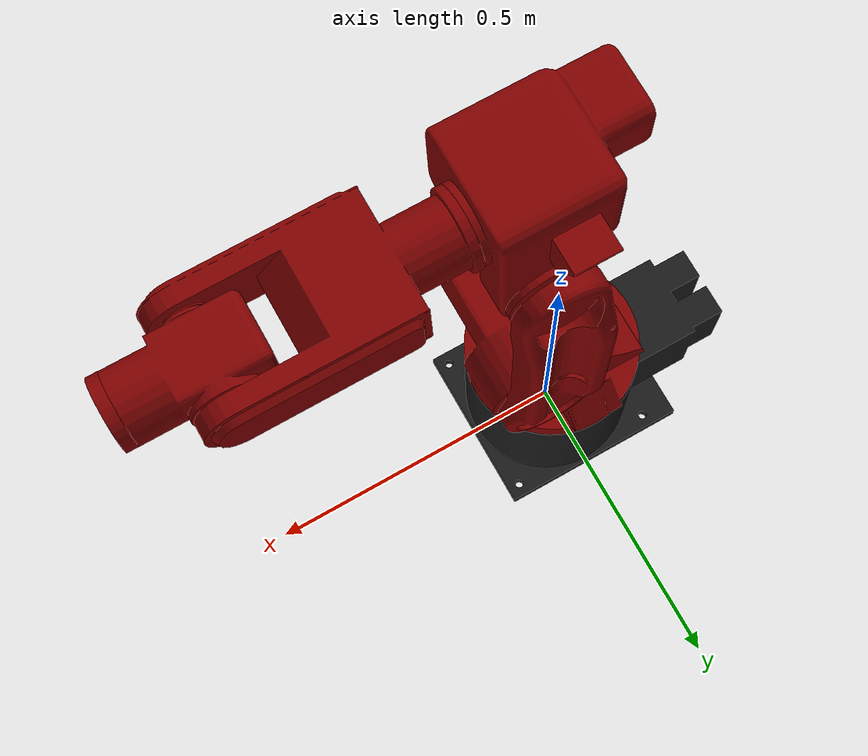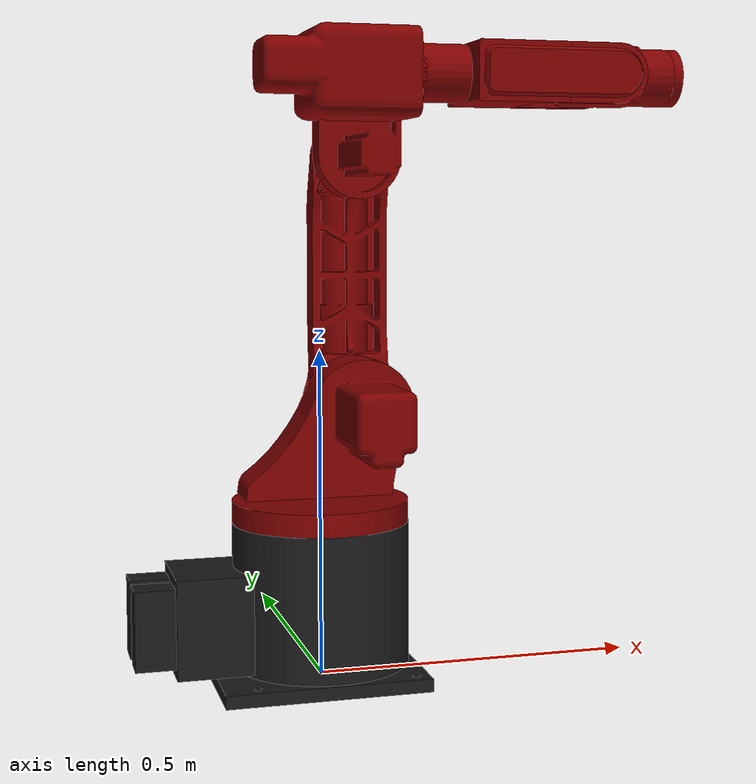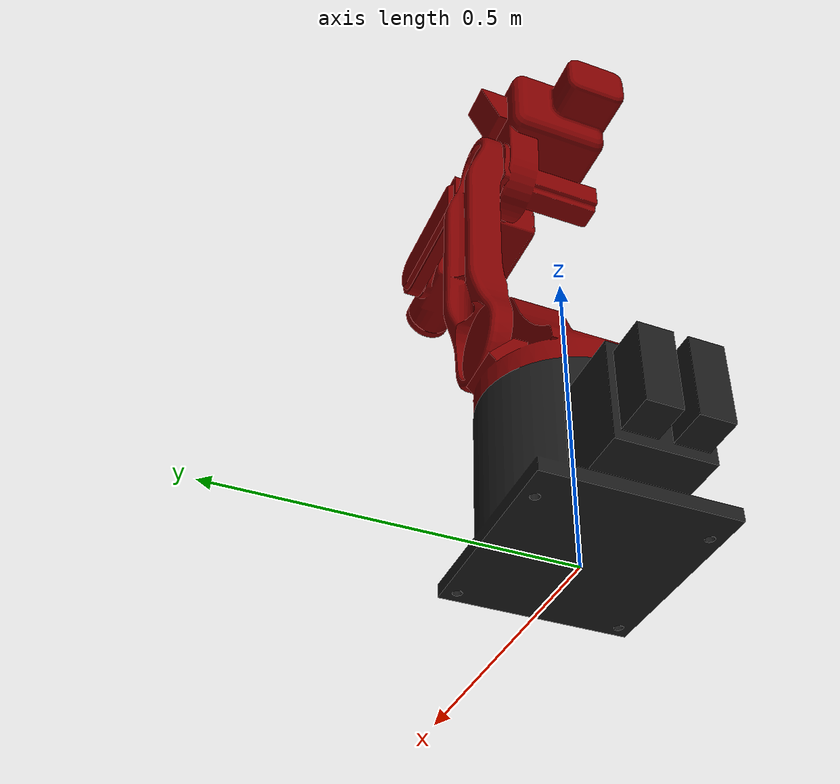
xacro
<?xml version="1.0" ?>
<robot name="borunte" xmlns:xacro="http://ros.org/wiki/xacro">
    <xacro:include filename="$(find borunte_support)/urdf/borunte_none_macro.xacro"/>
    <xacro:borunte_none_macro prefix=""/>

    <!-- 'world' frame: default pose reference frame -->
    <link name="world" />
    <joint name="world-base_link" type="fixed">
      <origin xyz="0 0 0" rpy="0 0 0"/>
      <axis xyz="0 0 1"/>
      <child link="world"/>
      <parent link="base_link"/>
    </joint>
</robot>

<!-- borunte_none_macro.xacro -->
<robot xmlns:xacro="http://ros.org/wiki/xacro">
  <xacro:macro name="borunte_none_macro" params="prefix">

    <xacro:include filename="$(find borunte_support)/urdf/borunte_macro.xacro"/>
    <xacro:borunte_macro prefix="${prefix}"/>

    <!-- ROS-Industrial 'tool0' frame: all-zeros tool frame -->
    <link name="${prefix}tool0" />
    <joint name="${prefix}flange-tool0" type="fixed">
      <!-- marker -->
      <origin xyz="0 0 0" rpy="0 ${pi*1} 0" />
      <parent link="${prefix}flange" />
      <child link="${prefix}tool0" />
    </joint>

  </xacro:macro>
</robot>

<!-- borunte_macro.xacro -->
<robot xmlns:xacro="http://ros.org/wiki/xacro">
  <xacro:macro name="borunte_macro" params="prefix">
    <material name="${prefix}Black">
      <color rgba="0.1 0.1 0.1 0.99"/>
    </material>
    <material name="${prefix}DarkRed">
      <color rgba="0.5 0.0 0.0 0.99"/>
    </material>

    <!-- link list -->
    <link name="${prefix}base_link">
      <visual>
        <geometry>
          <mesh filename="package://borunte_support/meshes/base_link.stl"/>
        </geometry>
        <origin rpy="0.0 0 0.0" xyz="0 0 0"/>
        <material name="${prefix}Black"/>
      </visual>
      <collision>
        <geometry>
          <mesh filename="package://borunte_support/meshes/base_link_collision.stl"/>
        </geometry>
        <origin rpy="0.0 0 0.0" xyz="0 0 0"/>
      </collision>
    </link>

    <link name="${prefix}link_1">
      <visual>
        <geometry>
          <mesh filename="package://borunte_support/meshes/link_1.stl"/>
        </geometry>
        <origin rpy="0.0 0 0.0" xyz="0 0 0"/>
        <material name="${prefix}DarkRed"/>
      </visual>
      <collision>
        <geometry>
          <mesh filename="package://borunte_support/meshes/link_1_collision.stl"/>
        </geometry>
        <origin rpy="0.0 0 0.0" xyz="0 0 0"/>
      </collision>
      <inertial>
        <mass value="100"/>
        <inertia ixx="1.0" ixy="0.0" ixz="0.0" iyy="1.0" iyz="0.0" izz="1.0"/>
      </inertial>
    </link>

    <link name="${prefix}link_2">
      <visual>
        <geometry>
          <mesh filename="package://borunte_support/meshes/link_2.stl"/>
        </geometry>
        <origin rpy="0.0 0 0.0" xyz="0 0 0"/>
        <material name="${prefix}DarkRed"/>
      </visual>
      <collision>
        <geometry>
          <mesh filename="package://borunte_support/meshes/link_2_collision.stl"/>
        </geometry>
        <origin rpy="0.0 0 0.0" xyz="0 0 0"/>
      </collision>
      <inertial>
        <mass value="100"/>
        <inertia ixx="1.0" ixy="0.0" ixz="0.0" iyy="1.0" iyz="0.0" izz="1.0"/>
      </inertial>
    </link>

    <link name="${prefix}link_3">
      <visual>
        <geometry>
          <mesh filename="package://borunte_support/meshes/link_3.stl"/>
        </geometry>
        <origin rpy="0.0 0 0.0" xyz="0 0.01 0"/>
        <material name="${prefix}DarkRed"/>
      </visual>
      <collision>
        <geometry>
          <mesh filename="package://borunte_support/meshes/link_3_collision.stl"/>
        </geometry>
        <origin rpy="0.0 0 0.0" xyz="0 0.01 0"/>
      </collision>
      <inertial>
        <mass value="100"/>
        <inertia ixx="1.0" ixy="0.0" ixz="0.0" iyy="1.0" iyz="0.0" izz="1.0"/>
      </inertial>
    </link>

    <link name="${prefix}link_4">
      <visual>
        <geometry>
          <mesh filename="package://borunte_support/meshes/link_4.stl"/>
        </geometry>
        <origin rpy="0.0 0.0 0.0" xyz="0 0 0"/>
        <material name="${prefix}DarkRed"/>
      </visual>
      <collision>
        <geometry>
          <mesh filename="package://borunte_support/meshes/link_4_collision.stl"/>
        </geometry>
        <origin rpy="0.0 0 0.0" xyz="0 0 0"/>
      </collision>
      <inertial>
        <mass value="100"/>
        <inertia ixx="1.0" ixy="0.0" ixz="0.0" iyy="1.0" iyz="0.0" izz="1.0"/>
      </inertial>
    </link>

    <link name="${prefix}link_5">
      <visual>
        <geometry>
          <mesh filename="package://borunte_support/meshes/link_5.stl"/>
        </geometry>
        <origin rpy="0 0 0" xyz="0 0 0"/>
        <material name="${prefix}DarkRed"/>
      </visual>
      <collision>
        <geometry>
          <mesh filename="package://borunte_support/meshes/link_5_collision.stl"/>
        </geometry>
        <origin rpy="0 0 0" xyz="0 0 0"/>
      </collision>
      <inertial>
        <mass value="100"/>
        <inertia ixx="1.0" ixy="0.0" ixz="0.0" iyy="1.0" iyz="0.0" izz="1.0"/>
      </inertial>
    </link>

    <link name="${prefix}link_6">
      <visual>
        <geometry>
          <mesh filename="package://borunte_support/meshes/link_6.stl"/>
        </geometry>
        <origin rpy="0 0 0.0" xyz="0 0 0"/>
        <material name="${prefix}DarkRed"/>
      </visual>
      <collision>
        <geometry>
          <mesh filename="package://borunte_support/meshes/link_6_collision.stl"/>
        </geometry>
        <origin rpy="0 0 0.0" xyz="0 0 0"/>
      </collision>
      <inertial>
        <mass value="100"/>
        <inertia ixx="1.0" ixy="0.0" ixz="0.0" iyy="1.0" iyz="0.0" izz="1.0"/>
      </inertial>
    </link>

    <!-- joint list -->
    <joint name="${prefix}joint_1" type="revolute">
      <limit effort="1000.0" lower="-3.076" upper="3.076" velocity="3.14"/>
      <parent link="base_link"/>
      <child link="link_1"/>
      <axis xyz="0 0 1"/>
      <origin rpy="0.0 0.0 0.0" xyz="0 0 0.24"/>
    </joint>

    <joint name="${prefix}joint_2" type="revolute">
      <!-- actual limit -1.74, reduced to reduce config problems -->
      <limit effort="1000.0" lower="-1.0" upper="2.35" velocity="1.0"/>
      <parent link="link_1"/>
      <child link="link_2"/>
      <axis xyz="0 1 0"/>
      <origin rpy="0.0 0.0 0.0" xyz="0.07 0.09 0.165"/>
    </joint>

    <joint name="${prefix}joint_3" type="revolute">
      <limit effort="1000.0" lower="-2.094" upper="1.570" velocity="1.3"/>
      <parent link="link_2"/>
      <child link="link_3"/>
      <axis xyz="0 1 0"/>
      <origin rpy="0.0 ${pi/2.0} 0.0" xyz="0.0 0.0 0.39"/>
    </joint>

    <joint name="${prefix}joint_4" type="revolute">
      <!-- actual limit +-2.094, reduced to reduce config problems -->
      <limit effort="1000.0" lower="${-pi/2.0}" upper="${pi/2.0}" velocity="2.0"/>
      <parent link="link_3"/>
      <child link="link_4"/>
      <axis xyz="0 0 1"/>
      <origin rpy="0.0 0.0 0.0" xyz="-0.125 -0.09 0.075"/>
    </joint>

    <joint name="${prefix}joint_5" type="revolute">
      <limit effort="1000.0" lower="-1.919" upper="2.094" velocity="2.35"/>
      <parent link="link_4"/>
      <child link="link_5"/>
      <axis xyz="0 1 0"/>
      <origin rpy="0.0 0.0 0.0" xyz="0.0 -0.0 0.31"/>
    </joint>

    <joint name="${prefix}joint_6" type="revolute">
      <limit effort="1000.0" lower="${-pi}" upper="${pi}" velocity="2.35"/>
      <parent link="link_5"/>
      <child link="link_6"/>
      <axis xyz="0 0 1"/>
      <origin rpy="0.0 0.0 0.0" xyz="0 0 0.104"/>
    </joint>

    <!-- ROS-Industrial 'base' frame: base_link to Fanuc World Coordinates transform -->
    <link name="${prefix}base" />
    <joint name="${prefix}base_link-base" type="fixed">
      <origin xyz="0 0 0" rpy="0 0 0"/>
      <axis xyz="0 0 1"/>
      <parent link="${prefix}base_link"/>
      <child link="${prefix}base"/>
    </joint>

    <!-- ROS-Industrial 'flange' frame: attachment point for EEF models -->
    <link name="${prefix}flange"/>
    <joint name="${prefix}joint_6-flange" type="fixed">
      <origin xyz="0 0 0.015" rpy="0 0 0" />
      <parent link="${prefix}link_6" />
      <child link="${prefix}flange" />
    </joint>

  </xacro:macro>
</robot>
